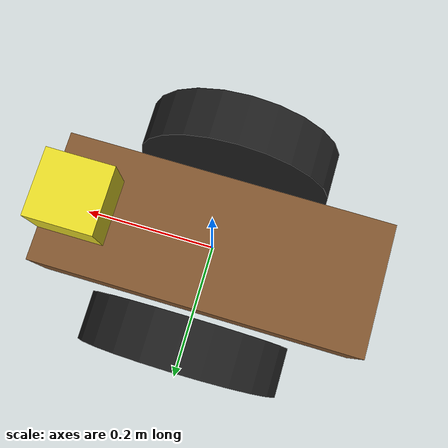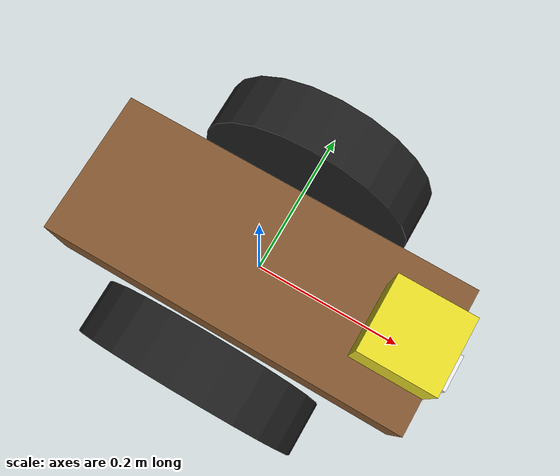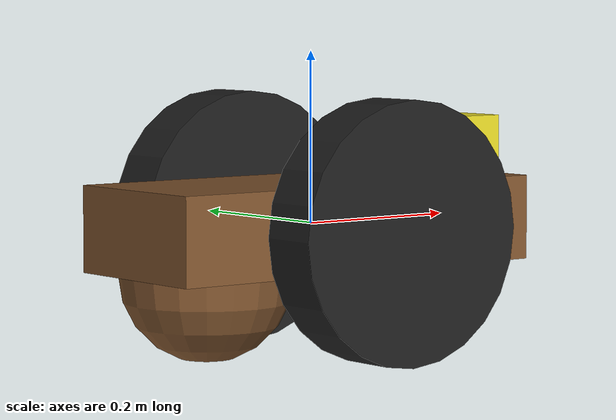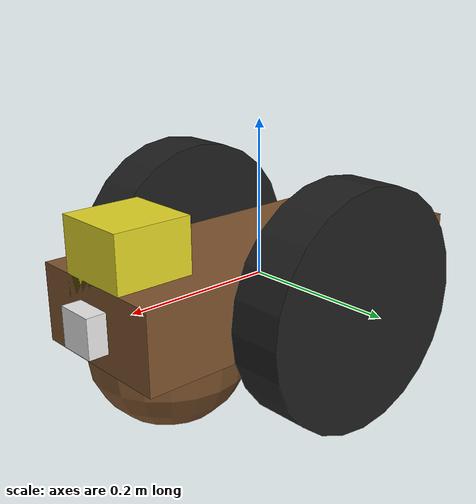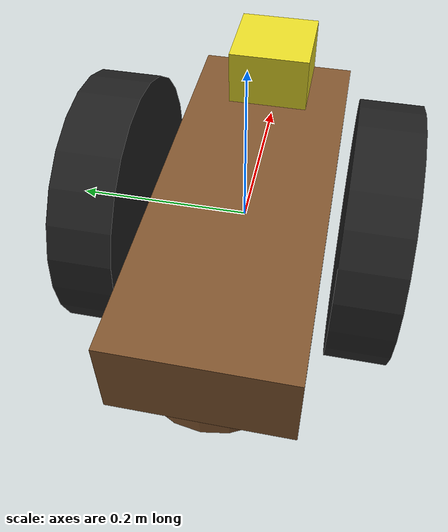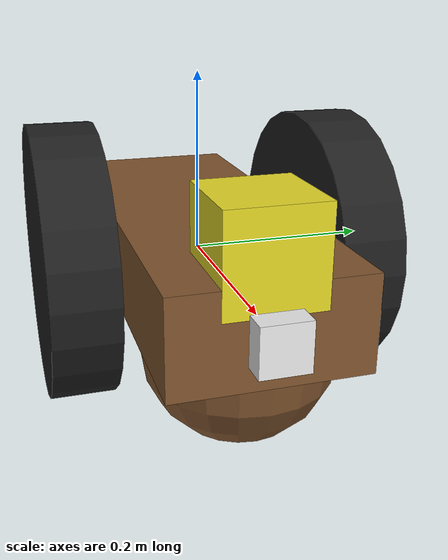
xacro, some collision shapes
<robot name="my_robot" xmlns:xacro="http://www.ros.org/wiki/xacro">
  <xacro:include filename="$(find my_robot)/urdf/my_robot.gazebo" />
  <link name="robot_footprint"></link>

  <joint name="robot_footprint_joint" type="fixed">
    <origin xyz="0 0 0" rpy="0 0 0" />
    <parent link="robot_footprint"/>
    <child link="chassis" />
  </joint>

  <link name='chassis'>
    <pose>0 0 0.1 0 0 0</pose>

    <inertial>
      <mass value="15.0"/>
      <origin xyz="0.0 0 0" rpy=" 0 0 0"/>
      <inertia
          ixx="0.1" ixy="0" ixz="0"
          iyy="0.1" iyz="0"
          izz="0.1"
      />
    </inertial>

    <collision name='collision'>
      <origin xyz="0 0 0" rpy=" 0 0 0"/>
      <geometry>
        <box size=".5 .2 .1"/>
      </geometry>
    </collision>

    <visual name='chassis_visual'>
      <origin xyz="0 0 0" rpy=" 0 0 0"/>
      <geometry>
        <box size=".5 .2 .1"/>
      </geometry>
    </visual>

    <collision name='back_caster_collision'>
      <origin xyz="-0.15 0 -0.05" rpy=" 0 0 0"/>
      <geometry>
        <sphere radius="0.0999"/>
      </geometry>
    </collision>

    <visual name='back_caster_visual'>
      <origin xyz="-0.15 0 -0.05" rpy=" 0 0 0"/>
      <geometry>
        <sphere radius="0.1"/>
      </geometry>
    </visual>

    <collision name='front_caster_collision'>
      <origin xyz="0.15 0 -0.05" rpy=" 0 0 0"/>
      <geometry>
        <sphere radius="0.0999"/>
      </geometry>
    </collision>

    <visual name='front_caster_visual'>
      <origin xyz="0.15 0 -0.05" rpy=" 0 0 0"/>
      <geometry>
        <sphere radius="0.1"/>
      </geometry>
    </visual>

  </link>

  <!-- LEFT AND RIGHT WHEEL -->

  <link name='left_wheel'>
    <inertial>
      <mass value="5.0"/>
      <origin xyz="0.0 0 0" rpy=" 0 0 0"/>
      <inertia
          ixx="0.1" ixy="0" ixz="0"
          iyy="0.1" iyz="0"
          izz="0.1"
      />
    </inertial>

    <collision name='left_wheel_collision'>
      <origin xyz="0 0 0" rpy="0 1.5707 1.5707" />
      <geometry>
        <cylinder radius="0.15" length="0.07" />
      </geometry>
    </collision>

    <visual name='left_wheel_visual'>
      <origin xyz="0 0 0" rpy="0 1.5707 1.5707" />
      <geometry>
        <cylinder radius="0.15" length="0.07" />
      </geometry>
    </visual>
  </link>

  <link name='right_wheel'>
    <inertial>
      <mass value="5.0"/>
      <origin xyz="0.0 0 0" rpy=" 0 0 0"/>
      <inertia
          ixx="0.1" ixy="0" ixz="0"
          iyy="0.1" iyz="0"
          izz="0.1"
      />
    </inertial>

    <collision name='right_wheel_collision'>
      <origin xyz="0 0 0" rpy="0 1.5707 1.5707" />
      <geometry>
        <cylinder radius="0.15" length="0.07" />
      </geometry>
    </collision>

    <visual name='right_wheel_visual'>
      <origin xyz="0 0 0" rpy="0 1.5707 1.5707" />
      <geometry>
        <cylinder radius="0.15" length="0.07" />
      </geometry>
    </visual>
  </link>

  <joint type="continuous" name="left_wheel_hinge">
    <origin xyz="0 0.15 0" rpy="0 0 0"/>
    <child link="left_wheel"/>
    <parent link="chassis"/>
    <axis xyz="0 1 0" rpy="0 0 0"/>
    <limit effort="10000" velocity="1000"/>
    <dynamics damping="1.0" friction="1.0"/>
  </joint>

  <joint type="continuous" name="right_wheel_hinge">
    <origin xyz="0 -0.15 0" rpy="0 0 0"/>
    <child link="right_wheel"/>
    <parent link="chassis"/>
    <axis xyz="0 1 0" rpy="0 0 0"/>
    <limit effort="10000" velocity="1000"/>
    <dynamics damping="1.0" friction="1.0"/>
  </joint>

  <!-- CAMERA -->
  <link name="camera">
    <collision name="camera_collision">
      <origin xyz="0 0 0" rpy="0 0 0" />
      <geometry>
        <box size="0.05 0.05 0.05" />
      </geometry>
    </collision>

    <visual name="camera_visual">
      <origin xyz="0 0 0" rpy="0 0 0" />
      <geometry>
        <box size="0.05 0.05 0.05" />
      </geometry>
    </visual>

    <inertial>
      <mass value="0.1" />
      <origin xyz="0.05 0.05 0.05" rpy="0 0 0" />
      <inertia
        ixx="1e-6" ixy="0" ixz="0" iyy="1e-6" iyz="0" izz="1e-6"
      />
    </inertial>
  </link>

  <joint type="fixed" name="camera_joint">
    <axis xyz="0 1 0" rpy="0 0 0" />
    <origin xyz="0.25 0 0" rpy="0 0 0" />
    <parent link="chassis" />
    <child link="camera" />
  </joint>

  <joint name="camera_optical_joint" type="fixed">
    <origin xyz="0 0 0" rpy="-1.5707 0 -1.5707"/>
    <parent link="camera"/>
    <child link="camera_link_optical"/>
  </joint>

  <link name="camera_link_optical">
  </link>

  <!-- LIDAR SENSOR -->
  <link name="hokuyo">
    <collision name="hokuyo_collision">
      <origin xyz="0 0 0" rpy="0 0 0" />
      <geometry>
        <box size="0.1 0.1 0.1" />
      </geometry>
    </collision>

    <visual name="hokuyo_visual">
      <origin xyz="0 0 0" rpy="0 0 0" />
      <geometry>
        <mesh filename="package://my_robot/meshes/hokuyo.dae" />
      </geometry>
    </visual>

    <inertial>
      <mass value="1e-5" />
      <inertia
        ixx="1e-6" ixy="0" ixz="0" iyy="1e-6" iyz="0" izz="1e-6"
      />
    </inertial>
  </link>

  <joint type="fixed" name="hokuyo_joint">
    <axis xyz="0 1 0" />
    <origin  xyz="0.2 0 0.07" rpy="0 0 0" />
    <parent link="chassis" />
    <child  link="hokuyo" />
  </joint>

  <!-- COLORS -->
  <gazebo reference="chassis">
    <material>Gazebo/Brown</material>
  </gazebo>
  <gazebo reference="left_wheel">
    <material>Gazebo/Black</material>
  </gazebo>
  <gazebo reference="right_wheel">
    <material>Gazebo/Black</material>
  </gazebo>
  <gazebo reference="camera">
    <material>Gazebo/White</material>
  </gazebo>
  <gazebo reference="hokuyo">
    <material>Gazebo/Yellow</material>
  </gazebo>
</robot>
